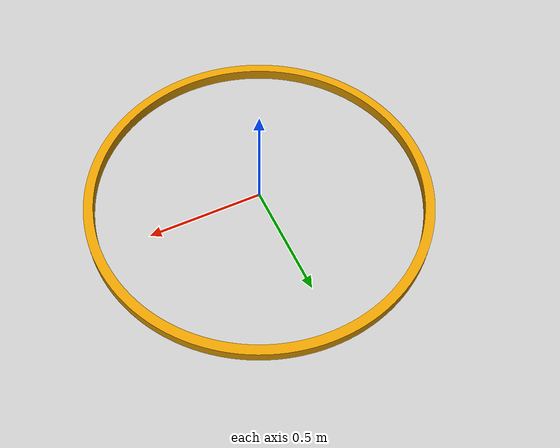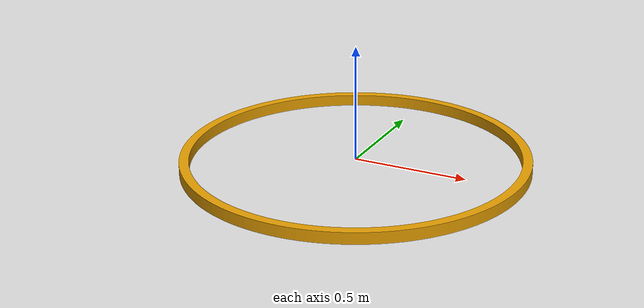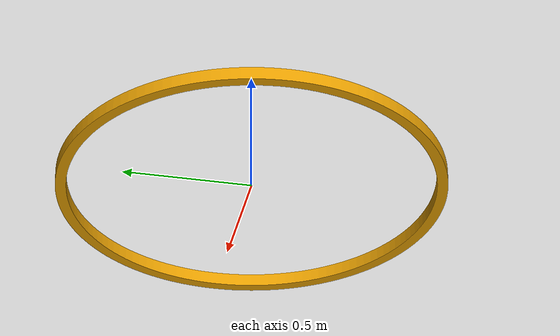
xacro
<?xml version="1.0"?>

<robot name="checkpoint" xmlns:xacro="http://ros.org/wiki/xacro">

  <xacro:arg name="mass" default="100" />
  <xacro:arg name="radius" default="0.75" />
  <xacro:arg name="thickness" default="0.05" />
  <xacro:arg name="altitude" default="1.5" />

  <xacro:property name="namespace" value="$(arg namespace)" />
  <xacro:property name="mass" value="$(arg mass)" />
  <xacro:property name="scale_r" value="${$(arg radius)/7.5}" />
  <xacro:property name="scale_t" value="${$(arg thickness)/50}" />
  <xacro:property name="pillar_length" value="${$(arg altitude)-0.1-$(arg radius)}" />
  <xacro:property name="mesh_file" value="package://rrc_control/models/mesh/Plain_Cylinder.stl" />

  <!-- Macro for the inertia of a box -->
  <xacro:macro name="box_inertia" params="x y z mass">
    <inertia ixx="${0.0833333 * mass * (y*y + z*z)}" ixy="0.0" ixz="0.0"
      iyy="${0.0833333 * mass * (x*x + z*z)}" iyz="0.0"
      izz="${0.0833333 * mass * (x*x + y*y)}" />
  </xacro:macro>

  <!-- Macro for the inertia of a cylinder -->
  <xacro:macro name="cyl_inertia" params="h r mass">
    <inertia ixx="${0.0833333 * mass * (3*r*r + h*h)}" ixy="0.0" ixz="0.0"
      iyy="${0.0833333 * mass * (3*r*r + h*h)}" iyz="0.0"
      izz="${0.5 * mass * (r*r)}" />
  </xacro:macro>

    <!-- Macro for the inertial properties of a box -->
  <xacro:macro name="box_inertial" params="x y z mass *origin">
    <inertial>
      <mass value="${mass}"/>
      <xacro:insert_block name="origin" />
      <xacro:box_inertia x="${x}" y="${y}" z="${z}" mass="${mass}" />
    </inertial>
  </xacro:macro>

<link name="ring">
  <visual>
    <origin xyz="0 0 0" rpy="0 0 0" />
    <geometry>
      <mesh filename="${mesh_file}" scale="${scale_r} ${scale_r} ${scale_t}" />
    </geometry>
  </visual>
  <collision>
    <origin xyz="0 0 0" rpy="${pi} 0 0" />
    <geometry>
      <mesh filename="${mesh_file}" scale="${scale_r} ${scale_r} ${scale_t}" />
     </geometry>
  </collision>
  <inertial>
    <mass value="2" />
    <xacro:cyl_inertia h="${50*scale_t}" r="${7.5*scale_r}" mass="2" />
  </inertial>
</link>

</robot>
